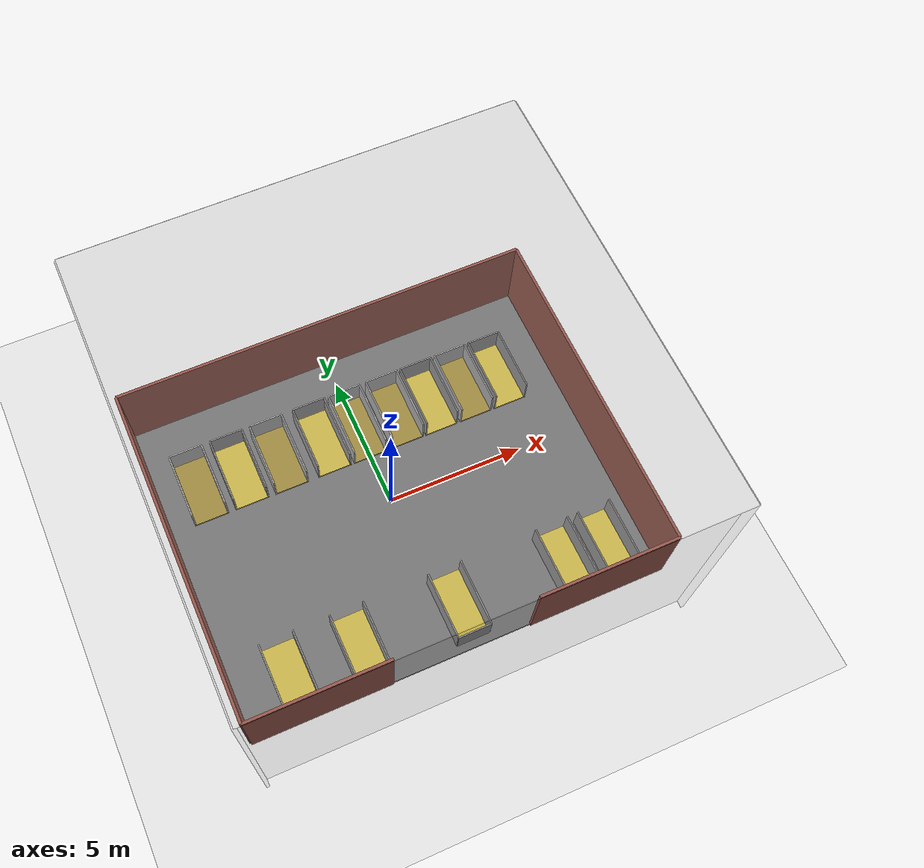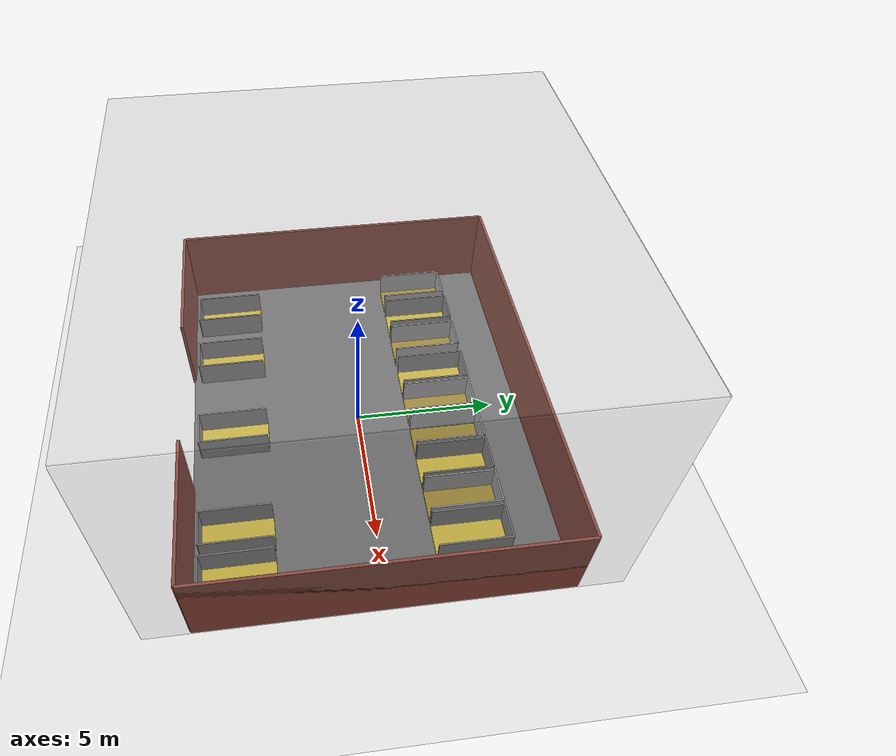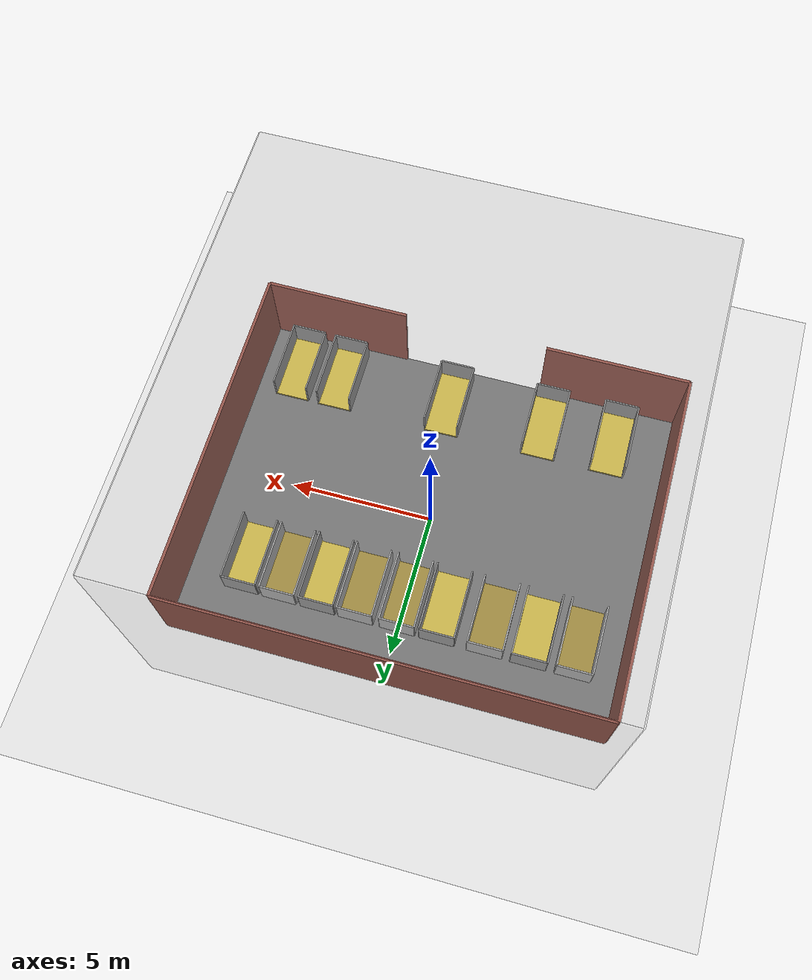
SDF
<sdf version="1.10">
 <world name="default">
  <physics name="1ms" type="ignored">
   <max_step_size>0.001</max_step_size>
   <real_time_factor>1</real_time_factor>
   <real_time_update_rate>1000</real_time_update_rate>
  </physics>
  <plugin name="gz::sim::systems::Buoyancy" filename="gz-sim-buoyancy-system">
   <uniform_fluid_density>0</uniform_fluid_density>
  </plugin>
  <plugin name="gz::sim::systems::Physics" filename="gz-sim-physics-system"/>
  <plugin name="gz::sim::systems::UserCommands" filename="gz-sim-user-commands-system"/>
  <plugin name="gz::sim::systems::SceneBroadcaster" filename="gz-sim-scene-broadcaster-system"/>
  <plugin name="gz::sim::systems::Imu" filename="gz-sim-imu-system"/>
  <plugin name="gz::sim::systems::Sensors" filename="gz-sim-sensors-system">
   <render_engine>ogre2</render_engine>
  </plugin>
  <plugin name="gz::sim::systems::Buoyancy" filename="gz-sim-buoyancy-system">
   <uniform_fluid_density>0</uniform_fluid_density>
  </plugin>
  <plugin name="gz::sim::systems::ParticleEmitter" filename="gz-sim-particle-emitter-system"/>
  <plugin name="gz::sim::systems::Contact" filename="gz-sim-contact-system"/>
  <gravity>0 0 -9.8000000000000007</gravity>
  <magnetic_field>5.5644999999999998e-06 2.2875799999999999e-05 -4.2388400000000002e-05</magnetic_field>
  <atmosphere type="adiabatic"/>
  <scene>
   <ambient>0.400000006 0.400000006 0.400000006 1</ambient>
   <background>0.699999988 0.699999988 0.699999988 1</background>
   <shadows>true</shadows>
  </scene>
  <model name="ground_plane">
   <static>true</static>
   <link name="link">
    <collision name="collision">
     <geometry><plane><normal>0 0 1</normal><size>1 1</size></plane></geometry>
    </collision>
    <visual name="visual">
     <geometry><plane><normal>0 0 1</normal><size>100 100</size></plane></geometry>
     <material>
      <ambient>0.800000012 0.800000012 0.800000012 1</ambient>
      <diffuse>0.800000012 0.800000012 0.800000012 1</diffuse>
      <specular>0.800000012 0.800000012 0.800000012 1</specular>
     </material>
    </visual>
    <inertial>
     <mass>1</mass>
     <inertia><ixx>1</ixx><ixy>0</ixy><ixz>0</ixz><iyy>1</iyy><iyz>0</iyz><izz>1</izz></inertia>
    </inertial>
   </link>
  </model>
  <model name="boundary1">
   <pose>0 7.5 1.5 0 0 0</pose>
   <static>true</static>
   <link name="body">
    <visual name="body_visual">
     <geometry><box><size>15 0.10000000000000001 15</size></box></geometry>
     <material>
      <ambient>1 0.899999976 0.899999976 0.200000003</ambient>
      <diffuse>0.5 0.5 0.5 0.200000003</diffuse>
     </material>
    </visual>
    <collision name="body_collision">
     <geometry><box><size>15 0.10000000000000001 4</size></box></geometry>
    </collision>
    <inertial>
     <mass>1</mass>
     <inertia><ixx>1</ixx><ixy>0</ixy><ixz>0</ixz><iyy>1</iyy><iyz>0</iyz><izz>1</izz></inertia>
    </inertial>
   </link>
  </model>
  <model name="boundary2">
   <pose>0 -7.1991119384765625 1.5 0 0 0</pose>
   <static>true</static>
   <link name="body">
    <visual name="body_visual">
     <geometry><box><size>15 0.10000000000000001 15</size></box></geometry>
     <material>
      <ambient>1 0.899999976 0.899999976 0.200000003</ambient>
      <diffuse>0.5 0.5 0.5 0.200000003</diffuse>
     </material>
    </visual>
    <collision name="body_collision">
     <geometry><box><size>15 0.10000000000000001 4</size></box></geometry>
    </collision>
    <inertial>
     <mass>1</mass>
     <inertia><ixx>1</ixx><ixy>0</ixy><ixz>0</ixz><iyy>1</iyy><iyz>0</iyz><izz>1</izz></inertia>
    </inertial>
   </link>
  </model>
  <model name="boundary3">
   <pose>7.5 0 1.5 0 0 0</pose>
   <static>true</static>
   <link name="body">
    <visual name="body_visual">
     <geometry><box><size>0.10000000000000001 15 15</size></box></geometry>
     <material>
      <ambient>1 0.899999976 0.899999976 0.200000003</ambient>
      <diffuse>0.5 0.5 0.5 0.200000003</diffuse>
     </material>
    </visual>
    <collision name="body_collision">
     <geometry><box><size>0.10000000000000001 10 4</size></box></geometry>
    </collision>
    <inertial>
     <mass>1</mass>
     <inertia><ixx>1</ixx><ixy>0</ixy><ixz>0</ixz><iyy>1</iyy><iyz>0</iyz><izz>1</izz></inertia>
    </inertial>
   </link>
  </model>
  <model name="boundary4">
   <pose>-7.5 0 1.5 0 0 0</pose>
   <static>true</static>
   <link name="body">
    <visual name="body_visual">
     <geometry><box><size>0.10000000000000001 15 15</size></box></geometry>
     <material>
      <ambient>1 0.899999976 0.899999976 0.200000003</ambient>
      <diffuse>0.5 0.5 0.5 0.200000003</diffuse>
     </material>
    </visual>
    <collision name="body_collision">
     <geometry><box><size>0.10000000000000001 10 4</size></box></geometry>
    </collision>
    <inertial>
     <mass>1</mass>
     <inertia><ixx>1</ixx><ixy>0</ixy><ixz>0</ixz><iyy>1</iyy><iyz>0</iyz><izz>1</izz></inertia>
    </inertial>
   </link>
  </model>
  <model name="ceiling">
   <pose>0 0 9 0 0 0</pose>
   <static>true</static>
   <link name="body">
    <visual name="body_visual">
     <geometry><box><size>15 15 0.10000000000000001</size></box></geometry>
     <material>
      <ambient>1 0.899999976 0.899999976 0.200000003</ambient>
      <diffuse>0.5 0.5 0.5 0.200000003</diffuse>
     </material>
    </visual>
    <collision name="body_collision">
     <geometry><box><size>15 15 0.10000000000000001</size></box></geometry>
    </collision>
    <inertial>
     <mass>1</mass>
     <inertia><ixx>1</ixx><ixy>0</ixy><ixz>0</ixz><iyy>1</iyy><iyz>0</iyz><izz>1</izz></inertia>
    </inertial>
   </link>
  </model>
  <model name="barn">
   <static>true</static>
   <link name="floor">
    <collision name="floor_coll">
     <geometry><box><size>15 12 0.10000000000000001</size></box></geometry>
     <surface><friction><ode><mu>1</mu><mu2>1</mu2></ode></friction></surface>
    </collision>
    <visual name="floor_vis">
     <geometry><box><size>15 12 0.10000000000000001</size></box></geometry>
     <material>
      <ambient>0.35 0.35 0.35 1</ambient>
      <diffuse>0.45 0.45 0.45 1</diffuse>
      <specular>0.2 0.2 0.2 1</specular>
      <emissive>0 0 0 1</emissive>
     </material>
    </visual>
    <inertial>
     <mass>1</mass>
     <inertia><ixx>1</ixx><ixy>0</ixy><ixz>0</ixz><iyy>1</iyy><iyz>0</iyz><izz>1</izz></inertia>
    </inertial>
   </link>
   <link name="wall_w">
    <pose>-7.5 0 1.5 0 0 0</pose>
    <collision name="c"><geometry><box><size>0.10000000000000001 12 3</size></box></geometry></collision>
    <visual name="v">
     <geometry><box><size>0.10000000000000001 12 3</size></box></geometry>
     <material>
      <ambient>0.45 0.25 0.2 1</ambient>
      <diffuse>0.6 0.3 0.25 1</diffuse>
      <specular>0.2 0.2 0.2 1</specular>
      <emissive>0 0 0 1</emissive>
     </material>
    </visual>
    <inertial>
     <mass>1</mass>
     <inertia><ixx>1</ixx><ixy>0</ixy><ixz>0</ixz><iyy>1</iyy><iyz>0</iyz><izz>1</izz></inertia>
    </inertial>
   </link>
   <link name="wall_e">
    <pose>7.5 0 1.5 0 0 0</pose>
    <collision name="c"><geometry><box><size>0.10000000000000001 12 3</size></box></geometry></collision>
    <visual name="v">
     <geometry><box><size>0.10000000000000001 12 3</size></box></geometry>
     <material>
      <ambient>0.45 0.25 0.2 1</ambient>
      <diffuse>0.6 0.3 0.25 1</diffuse>
      <specular>0.2 0.2 0.2 1</specular>
      <emissive>0 0 0 1</emissive>
     </material>
    </visual>
    <inertial>
     <mass>1</mass>
     <inertia><ixx>1</ixx><ixy>0</ixy><ixz>0</ixz><iyy>1</iyy><iyz>0</iyz><izz>1</izz></inertia>
    </inertial>
   </link>
   <model name="south_wall">
    <static>true</static>
    <link name="sw_left">
     <pose>-5 -6 1.5 0 0 0</pose>
     <collision name="c"><geometry><box><size>5 0.10000000000000001 3</size></box></geometry></collision>
     <visual name="v">
      <geometry><box><size>5 0.10000000000000001 3</size></box></geometry>
      <material>
       <ambient>0.45 0.25 0.2 1</ambient>
       <diffuse>0.6 0.3 0.25 1</diffuse>
       <specular>0.2 0.2 0.2 1</specular>
       <emissive>0 0 0 1</emissive>
      </material>
     </visual>
    </link>
    <link name="sw_right">
     <pose>5 -6 1.5 0 0 0</pose>
     <collision name="c"><geometry><box><size>5 0.10000000000000001 3</size></box></geometry></collision>
     <visual name="v">
      <geometry><box><size>5 0.10000000000000001 3</size></box></geometry>
      <material>
       <ambient>0.45 0.25 0.2 1</ambient>
       <diffuse>0.6 0.3 0.25 1</diffuse>
       <specular>0.2 0.2 0.2 1</specular>
       <emissive>0 0 0 1</emissive>
      </material>
     </visual>
    </link>
   </model>
   <link name="wall_n">
    <pose>0 6 1.5 0 0 0</pose>
    <collision name="c"><geometry><box><size>15 0.10000000000000001 3</size></box></geometry></collision>
    <visual name="v">
     <geometry><box><size>15 0.10000000000000001 3</size></box></geometry>
     <material>
      <ambient>0.45 0.25 0.2 1</ambient>
      <diffuse>0.6 0.3 0.25 1</diffuse>
      <specular>0.2 0.2 0.2 1</specular>
      <emissive>0 0 0 1</emissive>
     </material>
    </visual>
    <inertial>
     <mass>1</mass>
     <inertia><ixx>1</ixx><ixy>0</ixy><ixz>0</ixz><iyy>1</iyy><iyz>0</iyz><izz>1</izz></inertia>
    </inertial>
   </link>
  </model>
  <model name="cubicle_dry_1">
   <static>true</static>
   <pose>-4.4929409027099609 3.0041000843048096 0 0 0 0</pose>
   <link name="bedding">
    <pose>0 0 0.059999999999999998 0 0 0</pose>
    <collision name="c">
     <geometry><box><size>1.2 2.3999999999999999 0.12</size></box></geometry>
     <surface><friction><ode><mu>0.80000000000000004</mu><mu2>0.80000000000000004</mu2></ode></friction></surface>
    </collision>
    <visual name="v">
     <geometry><box><size>1.2 2.3999999999999999 0.12</size></box></geometry>
     <material><ambient>0.850000024 0.75 0.25 1</ambient><diffuse>0.850000024 0.75 0.25 1</diffuse></material>
    </visual>
    <inertial>
     <mass>1</mass>
     <inertia><ixx>1</ixx><ixy>0</ixy><ixz>0</ixz><iyy>1</iyy><iyz>0</iyz><izz>1</izz></inertia>
    </inertial>
   </link>
   <link name="rail_left">
    <pose>-0.59999999999999964 0 0.5 0 0 0</pose>
    <collision name="c">
     <geometry><box><size>0.050000000000000003 2.3999999999999999 1</size></box></geometry>
    </collision>
    <visual name="v">
     <geometry><box><size>0.050000000000000003 2.3999999999999999 1</size></box></geometry>
     <material>
      <ambient>0.5 0.5 0.5 1</ambient>
      <diffuse>0.6 0.6 0.6 1</diffuse>
      <specular>0.8 0.8 0.8 1</specular>
      <emissive>0 0 0 1</emissive>
     </material>
    </visual>
    <inertial>
     <mass>1</mass>
     <inertia><ixx>1</ixx><ixy>0</ixy><ixz>0</ixz><iyy>1</iyy><iyz>0</iyz><izz>1</izz></inertia>
    </inertial>
   </link>
   <link name="rail_right">
    <pose>0.59999999999999964 0 0.5 0 0 0</pose>
    <collision name="c">
     <geometry><box><size>0.050000000000000003 2.3999999999999999 1</size></box></geometry>
    </collision>
    <visual name="v">
     <geometry><box><size>0.050000000000000003 2.3999999999999999 1</size></box></geometry>
     <material>
      <ambient>0.5 0.5 0.5 1</ambient>
      <diffuse>0.6 0.6 0.6 1</diffuse>
      <specular>0.8 0.8 0.8 1</specular>
      <emissive>0 0 0 1</emissive>
     </material>
    </visual>
    <inertial>
     <mass>1</mass>
     <inertia><ixx>1</ixx><ixy>0</ixy><ixz>0</ixz><iyy>1</iyy><iyz>0</iyz><izz>1</izz></inertia>
    </inertial>
   </link>
   <link name="rail_head">
    <pose>0 1.2000000000000002 0.5 0 0 0</pose>
    <collision name="c"><geometry><box><size>1.2 0.050000000000000003 1</size></box></geometry></collision>
    <visual name="v">
     <geometry><box><size>1.2 0.050000000000000003 1</size></box></geometry>
     <material>
      <ambient>0.5 0.5 0.5 1</ambient>
      <diffuse>0.6 0.6 0.6 1</diffuse>
      <specular>0.8 0.8 0.8 1</specular>
      <emissive>0 0 0 1</emissive>
     </material>
    </visual>
    <inertial>
     <mass>1</mass>
     <inertia><ixx>1</ixx><ixy>0</ixy><ixz>0</ixz><iyy>1</iyy><iyz>0</iyz><izz>1</izz></inertia>
    </inertial>
   </link>
  </model>
  <model name="cubicle_dry_2">
   <static>true</static>
   <pose>-1.3636399507522583 3.0049324035644531 0 0 0 0</pose>
   <link name="bedding">
    <pose>0 0 0.059999999999999998 0 0 0</pose>
    <collision name="c">
     <geometry><box><size>1.2 2.3999999999999999 0.12</size></box></geometry>
     <surface><friction><ode><mu>0.80000000000000004</mu><mu2>0.80000000000000004</mu2></ode></friction></surface>
    </collision>
    <visual name="v">
     <geometry><box><size>1.2 2.3999999999999999 0.12</size></box></geometry>
     <material><ambient>0.850000024 0.75 0.25 1</ambient><diffuse>0.850000024 0.75 0.25 1</diffuse></material>
    </visual>
    <inertial>
     <mass>1</mass>
     <inertia><ixx>1</ixx><ixy>0</ixy><ixz>0</ixz><iyy>1</iyy><iyz>0</iyz><izz>1</izz></inertia>
    </inertial>
   </link>
   <link name="rail_left">
    <pose>-0.60000000000000009 0 0.5 0 0 0</pose>
    <collision name="c">
     <geometry><box><size>0.050000000000000003 2.3999999999999999 1</size></box></geometry>
    </collision>
    <visual name="v">
     <geometry><box><size>0.050000000000000003 2.3999999999999999 1</size></box></geometry>
     <material>
      <ambient>0.5 0.5 0.5 1</ambient>
      <diffuse>0.6 0.6 0.6 1</diffuse>
      <specular>0.8 0.8 0.8 1</specular>
      <emissive>0 0 0 1</emissive>
     </material>
    </visual>
    <inertial>
     <mass>1</mass>
     <inertia><ixx>1</ixx><ixy>0</ixy><ixz>0</ixz><iyy>1</iyy><iyz>0</iyz><izz>1</izz></inertia>
    </inertial>
   </link>
   <link name="rail_right">
    <pose>0.60000000000000009 0 0.5 0 0 0</pose>
    <collision name="c">
     <geometry><box><size>0.050000000000000003 2.3999999999999999 1</size></box></geometry>
    </collision>
    <visual name="v">
     <geometry><box><size>0.050000000000000003 2.3999999999999999 1</size></box></geometry>
     <material>
      <ambient>0.5 0.5 0.5 1</ambient>
      <diffuse>0.6 0.6 0.6 1</diffuse>
      <specular>0.8 0.8 0.8 1</specular>
      <emissive>0 0 0 1</emissive>
     </material>
    </visual>
    <inertial>
     <mass>1</mass>
     <inertia><ixx>1</ixx><ixy>0</ixy><ixz>0</ixz><iyy>1</iyy><iyz>0</iyz><izz>1</izz></inertia>
    </inertial>
   </link>
   <link name="rail_head">
    <pose>0 1.2000000000000002 0.5 0 0 0</pose>
    <collision name="c"><geometry><box><size>1.2 0.050000000000000003 1</size></box></geometry></collision>
    <visual name="v">
     <geometry><box><size>1.2 0.050000000000000003 1</size></box></geometry>
     <material>
      <ambient>0.5 0.5 0.5 1</ambient>
      <diffuse>0.6 0.6 0.6 1</diffuse>
      <specular>0.8 0.8 0.8 1</specular>
      <emissive>0 0 0 1</emissive>
     </material>
    </visual>
    <inertial>
     <mass>1</mass>
     <inertia><ixx>1</ixx><ixy>0</ixy><ixz>0</ixz><iyy>1</iyy><iyz>0</iyz><izz>1</izz></inertia>
    </inertial>
   </link>
  </model>
  <model name="cubicle_dry_3">
   <static>true</static>
   <pose>2.7862999439239502 2.9982986450195312 0 0 0 0</pose>
   <link name="bedding">
    <pose>0 0 0.059999999999999998 0 0 0</pose>
    <collision name="c">
     <geometry><box><size>1.2 2.3999999999999999 0.12</size></box></geometry>
     <surface><friction><ode><mu>0.80000000000000004</mu><mu2>0.80000000000000004</mu2></ode></friction></surface>
    </collision>
    <visual name="v">
     <geometry><box><size>1.2 2.3999999999999999 0.12</size></box></geometry>
     <material><ambient>0.850000024 0.75 0.25 1</ambient><diffuse>0.850000024 0.75 0.25 1</diffuse></material>
    </visual>
    <inertial>
     <mass>1</mass>
     <inertia><ixx>1</ixx><ixy>0</ixy><ixz>0</ixz><iyy>1</iyy><iyz>0</iyz><izz>1</izz></inertia>
    </inertial>
   </link>
   <link name="rail_left">
    <pose>-0.60000000000000009 0 0.5 0 0 0</pose>
    <collision name="c">
     <geometry><box><size>0.050000000000000003 2.3999999999999999 1</size></box></geometry>
    </collision>
    <visual name="v">
     <geometry><box><size>0.050000000000000003 2.3999999999999999 1</size></box></geometry>
     <material>
      <ambient>0.5 0.5 0.5 1</ambient>
      <diffuse>0.6 0.6 0.6 1</diffuse>
      <specular>0.8 0.8 0.8 1</specular>
      <emissive>0 0 0 1</emissive>
     </material>
    </visual>
    <inertial>
     <mass>1</mass>
     <inertia><ixx>1</ixx><ixy>0</ixy><ixz>0</ixz><iyy>1</iyy><iyz>0</iyz><izz>1</izz></inertia>
    </inertial>
   </link>
   <link name="rail_right">
    <pose>0.60000000000000009 0 0.5 0 0 0</pose>
    <collision name="c">
     <geometry><box><size>0.050000000000000003 2.3999999999999999 1</size></box></geometry>
    </collision>
    <visual name="v">
     <geometry><box><size>0.050000000000000003 2.3999999999999999 1</size></box></geometry>
     <material>
      <ambient>0.5 0.5 0.5 1</ambient>
      <diffuse>0.6 0.6 0.6 1</diffuse>
      <specular>0.8 0.8 0.8 1</specular>
      <emissive>0 0 0 1</emissive>
     </material>
    </visual>
    <inertial>
     <mass>1</mass>
     <inertia><ixx>1</ixx><ixy>0</ixy><ixz>0</ixz><iyy>1</iyy><iyz>0</iyz><izz>1</izz></inertia>
    </inertial>
   </link>
   <link name="rail_head">
    <pose>0 1.2000000000000002 0.5 0 0 0</pose>
    <collision name="c"><geometry><box><size>1.2 0.050000000000000003 1</size></box></geometry></collision>
    <visual name="v">
     <geometry><box><size>1.2 0.050000000000000003 1</size></box></geometry>
     <material>
      <ambient>0.5 0.5 0.5 1</ambient>
      <diffuse>0.6 0.6 0.6 1</diffuse>
      <specular>0.8 0.8 0.8 1</specular>
      <emissive>0 0 0 1</emissive>
     </material>
    </visual>
    <inertial>
     <mass>1</mass>
     <inertia><ixx>1</ixx><ixy>0</ixy><ixz>0</ixz><iyy>1</iyy><iyz>0</iyz><izz>1</izz></inertia>
    </inertial>
   </link>
  </model>
  <model name="cubicle_dry_4">
   <static>true</static>
   <pose>5.498650074005127 2.9945023059844971 0 0 0 0</pose>
   <link name="bedding">
    <pose>0 0 0.059999999999999998 0 0 0</pose>
    <collision name="c">
     <geometry><box><size>1.2 2.3999999999999999 0.12</size></box></geometry>
     <surface><friction><ode><mu>0.80000000000000004</mu><mu2>0.80000000000000004</mu2></ode></friction></surface>
    </collision>
    <visual name="v">
     <geometry><box><size>1.2 2.3999999999999999 0.12</size></box></geometry>
     <material><ambient>0.850000024 0.75 0.25 1</ambient><diffuse>0.850000024 0.75 0.25 1</diffuse></material>
    </visual>
    <inertial>
     <mass>1</mass>
     <inertia><ixx>1</ixx><ixy>0</ixy><ixz>0</ixz><iyy>1</iyy><iyz>0</iyz><izz>1</izz></inertia>
    </inertial>
   </link>
   <link name="rail_left">
    <pose>-0.59999999999999964 0 0.5 0 0 0</pose>
    <collision name="c">
     <geometry><box><size>0.050000000000000003 2.3999999999999999 1</size></box></geometry>
    </collision>
    <visual name="v">
     <geometry><box><size>0.050000000000000003 2.3999999999999999 1</size></box></geometry>
     <material>
      <ambient>0.5 0.5 0.5 1</ambient>
      <diffuse>0.6 0.6 0.6 1</diffuse>
      <specular>0.8 0.8 0.8 1</specular>
      <emissive>0 0 0 1</emissive>
     </material>
    </visual>
    <inertial>
     <mass>1</mass>
     <inertia><ixx>1</ixx><ixy>0</ixy><ixz>0</ixz><iyy>1</iyy><iyz>0</iyz><izz>1</izz></inertia>
    </inertial>
   </link>
   <link name="rail_right">
    <pose>0.59999999999999964 0 0.5 0 0 0</pose>
    <collision name="c">
     <geometry><box><size>0.050000000000000003 2.3999999999999999 1</size></box></geometry>
    </collision>
    <visual name="v">
     <geometry><box><size>0.050000000000000003 2.3999999999999999 1</size></box></geometry>
     <material>
      <ambient>0.5 0.5 0.5 1</ambient>
      <diffuse>0.6 0.6 0.6 1</diffuse>
      <specular>0.8 0.8 0.8 1</specular>
      <emissive>0 0 0 1</emissive>
     </material>
    </visual>
    <inertial>
     <mass>1</mass>
     <inertia><ixx>1</ixx><ixy>0</ixy><ixz>0</ixz><iyy>1</iyy><iyz>0</iyz><izz>1</izz></inertia>
    </inertial>
   </link>
   <link name="rail_head">
    <pose>0 1.2000000000000002 0.5 0 0 0</pose>
    <collision name="c"><geometry><box><size>1.2 0.050000000000000003 1</size></box></geometry></collision>
    <visual name="v">
     <geometry><box><size>1.2 0.050000000000000003 1</size></box></geometry>
     <material>
      <ambient>0.5 0.5 0.5 1</ambient>
      <diffuse>0.6 0.6 0.6 1</diffuse>
      <specular>0.8 0.8 0.8 1</specular>
      <emissive>0 0 0 1</emissive>
     </material>
    </visual>
    <inertial>
     <mass>1</mass>
     <inertia><ixx>1</ixx><ixy>0</ixy><ixz>0</ixz><iyy>1</iyy><iyz>0</iyz><izz>1</izz></inertia>
    </inertial>
   </link>
  </model>
  <model name="cubicle_dry_5">
   <static>true</static>
   <pose>6.1291122436523438 -4.5083003044128418 0 0 0 -3.1361299998965806</pose>
   <link name="bedding">
    <pose>0 0 0.059999999999999998 0 0 0</pose>
    <collision name="c">
     <geometry><box><size>1.2 2.3999999999999999 0.12</size></box></geometry>
     <surface><friction><ode><mu>0.80000000000000004</mu><mu2>0.80000000000000004</mu2></ode></friction></surface>
    </collision>
    <visual name="v">
     <geometry><box><size>1.2 2.3999999999999999 0.12</size></box></geometry>
     <material><ambient>0.850000024 0.75 0.25 1</ambient><diffuse>0.850000024 0.75 0.25 1</diffuse></material>
    </visual>
    <inertial>
     <mass>1</mass>
     <inertia><ixx>1</ixx><ixy>0</ixy><ixz>0</ixz><iyy>1</iyy><iyz>0</iyz><izz>1</izz></inertia>
    </inertial>
   </link>
   <link name="rail_left">
    <pose>-0.60000047355440067 4.431029765328276e-09 0.49999999999999994 0 0 0</pose>
    <collision name="c">
     <geometry><box><size>0.050000000000000003 2.3999999999999999 1</size></box></geometry>
    </collision>
    <visual name="v">
     <geometry><box><size>0.050000000000000003 2.3999999999999999 1</size></box></geometry>
     <material>
      <ambient>0.5 0.5 0.5 1</ambient>
      <diffuse>0.6 0.6 0.6 1</diffuse>
      <specular>0.8 0.8 0.8 1</specular>
      <emissive>0 0 0 1</emissive>
     </material>
    </visual>
    <inertial>
     <mass>1</mass>
     <inertia><ixx>1</ixx><ixy>0</ixy><ixz>0</ixz><iyy>1</iyy><iyz>0</iyz><izz>1</izz></inertia>
    </inertial>
   </link>
   <link name="rail_right">
    <pose>0.60000047355440866 -4.4310342062203745e-09 0.49999999999999994 0 0 0</pose>
    <collision name="c">
     <geometry><box><size>0.050000000000000003 2.3999999999999999 1</size></box></geometry>
    </collision>
    <visual name="v">
     <geometry><box><size>0.050000000000000003 2.3999999999999999 1</size></box></geometry>
     <material>
      <ambient>0.5 0.5 0.5 1</ambient>
      <diffuse>0.6 0.6 0.6 1</diffuse>
      <specular>0.8 0.8 0.8 1</specular>
      <emissive>0 0 0 1</emissive>
     </material>
    </visual>
    <inertial>
     <mass>1</mass>
     <inertia><ixx>1</ixx><ixy>0</ixy><ixz>0</ixz><iyy>1</iyy><iyz>0</iyz><izz>1</izz></inertia>
    </inertial>
   </link>
   <link name="rail_head">
    <pose>8.8620648597270701e-09 1.2000009471088093 0.49999999999999994 0 0 0</pose>
    <collision name="c"><geometry><box><size>1.2 0.050000000000000003 1</size></box></geometry></collision>
    <visual name="v">
     <geometry><box><size>1.2 0.050000000000000003 1</size></box></geometry>
     <material>
      <ambient>0.5 0.5 0.5 1</ambient>
      <diffuse>0.6 0.6 0.6 1</diffuse>
      <specular>0.8 0.8 0.8 1</specular>
      <emissive>0 0 0 1</emissive>
     </material>
    </visual>
    <inertial>
     <mass>1</mass>
     <inertia><ixx>1</ixx><ixy>0</ixy><ixz>0</ixz><iyy>1</iyy><iyz>0</iyz><izz>1</izz></inertia>
    </inertial>
   </link>
  </model>
  <model name="cubicle_moist_1">
   <static>true</static>
   <pose>-6 3 0 0 0 0</pose>
   <link name="bedding">
    <pose>0 0 0.059999999999999998 0 0 0</pose>
    <collision name="c">
     <geometry><box><size>1.2 2.3999999999999999 0.12</size></box></geometry>
     <surface><friction><ode><mu>0.90000000000000002</mu><mu2>0.90000000000000002</mu2></ode></friction></surface>
    </collision>
    <visual name="v">
     <geometry><box><size>1.2 2.3999999999999999 0.12</size></box></geometry>
     <material>
      <ambient>0.649999976 0.550000012 0.200000003 1</ambient>
      <diffuse>0.649999976 0.550000012 0.200000003 1</diffuse>
     </material>
    </visual>
    <inertial>
     <mass>1</mass>
     <inertia><ixx>1</ixx><ixy>0</ixy><ixz>0</ixz><iyy>1</iyy><iyz>0</iyz><izz>1</izz></inertia>
    </inertial>
   </link>
   <link name="rail_left">
    <pose>-0.59999999999999964 0 0.5 0 0 0</pose>
    <collision name="c">
     <geometry><box><size>0.050000000000000003 2.3999999999999999 1</size></box></geometry>
    </collision>
    <visual name="v">
     <geometry><box><size>0.050000000000000003 2.3999999999999999 1</size></box></geometry>
    </visual>
    <inertial>
     <mass>1</mass>
     <inertia><ixx>1</ixx><ixy>0</ixy><ixz>0</ixz><iyy>1</iyy><iyz>0</iyz><izz>1</izz></inertia>
    </inertial>
   </link>
   <link name="rail_right">
    <pose>0.59999999999999964 0 0.5 0 0 0</pose>
    <collision name="c">
     <geometry><box><size>0.050000000000000003 2.3999999999999999 1</size></box></geometry>
    </collision>
    <visual name="v">
     <geometry><box><size>0.050000000000000003 2.3999999999999999 1</size></box></geometry>
    </visual>
    <inertial>
     <mass>1</mass>
     <inertia><ixx>1</ixx><ixy>0</ixy><ixz>0</ixz><iyy>1</iyy><iyz>0</iyz><izz>1</izz></inertia>
    </inertial>
   </link>
   <link name="rail_head">
    <pose>0 1.2000000000000002 0.5 0 0 0</pose>
    <collision name="c"><geometry><box><size>1.2 0.050000000000000003 1</size></box></geometry></collision>
    <visual name="v"><geometry><box><size>1.2 0.050000000000000003 1</size></box></geometry></visual>
    <inertial>
     <mass>1</mass>
     <inertia><ixx>1</ixx><ixy>0</ixy><ixz>0</ixz><iyy>1</iyy><iyz>0</iyz><izz>1</izz></inertia>
    </inertial>
   </link>
  </model>
  <model name="cubicle_moist_2">
   <static>true</static>
   <pose>-3 3 0 0 0 0</pose>
   <link name="bedding">
    <pose>0 0 0.059999999999999998 0 0 0</pose>
    <collision name="c">
     <geometry><box><size>1.2 2.3999999999999999 0.12</size></box></geometry>
     <surface><friction><ode><mu>0.90000000000000002</mu><mu2>0.90000000000000002</mu2></ode></friction></surface>
    </collision>
    <visual name="v">
     <geometry><box><size>1.2 2.3999999999999999 0.12</size></box></geometry>
     <material>
      <ambient>0.649999976 0.550000012 0.200000003 1</ambient>
      <diffuse>0.649999976 0.550000012 0.200000003 1</diffuse>
     </material>
    </visual>
    <inertial>
     <mass>1</mass>
     <inertia><ixx>1</ixx><ixy>0</ixy><ixz>0</ixz><iyy>1</iyy><iyz>0</iyz><izz>1</izz></inertia>
    </inertial>
   </link>
   <link name="rail_left">
    <pose>-0.60000000000000009 0 0.5 0 0 0</pose>
    <collision name="c">
     <geometry><box><size>0.050000000000000003 2.3999999999999999 1</size></box></geometry>
    </collision>
    <visual name="v">
     <geometry><box><size>0.050000000000000003 2.3999999999999999 1</size></box></geometry>
    </visual>
    <inertial>
     <mass>1</mass>
     <inertia><ixx>1</ixx><ixy>0</ixy><ixz>0</ixz><iyy>1</iyy><iyz>0</iyz><izz>1</izz></inertia>
    </inertial>
   </link>
   <link name="rail_right">
    <pose>0.60000000000000009 0 0.5 0 0 0</pose>
    <collision name="c">
     <geometry><box><size>0.050000000000000003 2.3999999999999999 1</size></box></geometry>
    </collision>
    <visual name="v">
     <geometry><box><size>0.050000000000000003 2.3999999999999999 1</size></box></geometry>
    </visual>
    <inertial>
     <mass>1</mass>
     <inertia><ixx>1</ixx><ixy>0</ixy><ixz>0</ixz><iyy>1</iyy><iyz>0</iyz><izz>1</izz></inertia>
    </inertial>
   </link>
   <link name="rail_head">
    <pose>0 1.2000000000000002 0.5 0 0 0</pose>
    <collision name="c"><geometry><box><size>1.2 0.050000000000000003 1</size></box></geometry></collision>
    <visual name="v"><geometry><box><size>1.2 0.050000000000000003 1</size></box></geometry></visual>
    <inertial>
     <mass>1</mass>
     <inertia><ixx>1</ixx><ixy>0</ixy><ixz>0</ixz><iyy>1</iyy><iyz>0</iyz><izz>1</izz></inertia>
    </inertial>
   </link>
  </model>
  <model name="cubicle_moist_3">
   <static>true</static>
   <pose>0 3 0 0 0 0</pose>
   <link name="bedding">
    <pose>0 0 0.059999999999999998 0 0 0</pose>
    <collision name="c">
     <geometry><box><size>1.2 2.3999999999999999 0.12</size></box></geometry>
     <surface><friction><ode><mu>0.90000000000000002</mu><mu2>0.90000000000000002</mu2></ode></friction></surface>
    </collision>
    <visual name="v">
     <geometry><box><size>1.2 2.3999999999999999 0.12</size></box></geometry>
     <material>
      <ambient>0.649999976 0.550000012 0.200000003 1</ambient>
      <diffuse>0.649999976 0.550000012 0.200000003 1</diffuse>
     </material>
    </visual>
    <inertial>
     <mass>1</mass>
     <inertia><ixx>1</ixx><ixy>0</ixy><ixz>0</ixz><iyy>1</iyy><iyz>0</iyz><izz>1</izz></inertia>
    </inertial>
   </link>
   <link name="rail_left">
    <pose>-0.59999999999999998 0 0.5 0 0 0</pose>
    <collision name="c">
     <geometry><box><size>0.050000000000000003 2.3999999999999999 1</size></box></geometry>
    </collision>
    <visual name="v">
     <geometry><box><size>0.050000000000000003 2.3999999999999999 1</size></box></geometry>
    </visual>
    <inertial>
     <mass>1</mass>
     <inertia><ixx>1</ixx><ixy>0</ixy><ixz>0</ixz><iyy>1</iyy><iyz>0</iyz><izz>1</izz></inertia>
    </inertial>
   </link>
   <link name="rail_right">
    <pose>0.59999999999999998 0 0.5 0 0 0</pose>
    <collision name="c">
     <geometry><box><size>0.050000000000000003 2.3999999999999999 1</size></box></geometry>
    </collision>
    <visual name="v">
     <geometry><box><size>0.050000000000000003 2.3999999999999999 1</size></box></geometry>
    </visual>
    <inertial>
     <mass>1</mass>
     <inertia><ixx>1</ixx><ixy>0</ixy><ixz>0</ixz><iyy>1</iyy><iyz>0</iyz><izz>1</izz></inertia>
    </inertial>
   </link>
   <link name="rail_head">
    <pose>0 1.2000000000000002 0.5 0 0 0</pose>
    <collision name="c"><geometry><box><size>1.2 0.050000000000000003 1</size></box></geometry></collision>
    <visual name="v"><geometry><box><size>1.2 0.050000000000000003 1</size></box></geometry></visual>
    <inertial>
     <mass>1</mass>
     <inertia><ixx>1</ixx><ixy>0</ixy><ixz>0</ixz><iyy>1</iyy><iyz>0</iyz><izz>1</izz></inertia>
    </inertial>
   </link>
  </model>
  <model name="cubicle_moist_4">
   <static>true</static>
   <pose>1.4506200551986694 3.0046675205230713 0 0 0 0</pose>
   <link name="bedding">
    <pose>0 0 0.059999999999999998 0 0 0</pose>
    <collision name="c">
     <geometry><box><size>1.2 2.3999999999999999 0.12</size></box></geometry>
     <surface><friction><ode><mu>0.90000000000000002</mu><mu2>0.90000000000000002</mu2></ode></friction></surface>
    </collision>
    <visual name="v">
     <geometry><box><size>1.2 2.3999999999999999 0.12</size></box></geometry>
     <material>
      <ambient>0.649999976 0.550000012 0.200000003 1</ambient>
      <diffuse>0.649999976 0.550000012 0.200000003 1</diffuse>
     </material>
    </visual>
    <inertial>
     <mass>1</mass>
     <inertia><ixx>1</ixx><ixy>0</ixy><ixz>0</ixz><iyy>1</iyy><iyz>0</iyz><izz>1</izz></inertia>
    </inertial>
   </link>
   <link name="rail_left">
    <pose>-0.60000000000000009 0 0.5 0 0 0</pose>
    <collision name="c">
     <geometry><box><size>0.050000000000000003 2.3999999999999999 1</size></box></geometry>
    </collision>
    <visual name="v">
     <geometry><box><size>0.050000000000000003 2.3999999999999999 1</size></box></geometry>
    </visual>
    <inertial>
     <mass>1</mass>
     <inertia><ixx>1</ixx><ixy>0</ixy><ixz>0</ixz><iyy>1</iyy><iyz>0</iyz><izz>1</izz></inertia>
    </inertial>
   </link>
   <link name="rail_right">
    <pose>0.60000000000000009 0 0.5 0 0 0</pose>
    <collision name="c">
     <geometry><box><size>0.050000000000000003 2.3999999999999999 1</size></box></geometry>
    </collision>
    <visual name="v">
     <geometry><box><size>0.050000000000000003 2.3999999999999999 1</size></box></geometry>
    </visual>
    <inertial>
     <mass>1</mass>
     <inertia><ixx>1</ixx><ixy>0</ixy><ixz>0</ixz><iyy>1</iyy><iyz>0</iyz><izz>1</izz></inertia>
    </inertial>
   </link>
   <link name="rail_head">
    <pose>0 1.2000000000000002 0.5 0 0 0</pose>
    <collision name="c"><geometry><box><size>1.2 0.050000000000000003 1</size></box></geometry></collision>
    <visual name="v"><geometry><box><size>1.2 0.050000000000000003 1</size></box></geometry></visual>
    <inertial>
     <mass>1</mass>
     <inertia><ixx>1</ixx><ixy>0</ixy><ixz>0</ixz><iyy>1</iyy><iyz>0</iyz><izz>1</izz></inertia>
    </inertial>
   </link>
  </model>
  <model name="cubicle_moist_5">
   <static>true</static>
   <pose>4.146634578704834 3 0 0 0 0</pose>
   <link name="bedding">
    <pose>0 0 0.059999999999999998 0 0 0</pose>
    <collision name="c">
     <geometry><box><size>1.2 2.3999999999999999 0.12</size></box></geometry>
     <surface><friction><ode><mu>0.90000000000000002</mu><mu2>0.90000000000000002</mu2></ode></friction></surface>
    </collision>
    <visual name="v">
     <geometry><box><size>1.2 2.3999999999999999 0.12</size></box></geometry>
     <material>
      <ambient>0.649999976 0.550000012 0.200000003 1</ambient>
      <diffuse>0.649999976 0.550000012 0.200000003 1</diffuse>
     </material>
    </visual>
    <inertial>
     <mass>1</mass>
     <inertia><ixx>1</ixx><ixy>0</ixy><ixz>0</ixz><iyy>1</iyy><iyz>0</iyz><izz>1</izz></inertia>
    </inertial>
   </link>
   <link name="rail_left">
    <pose>-0.59999999999999964 0 0.5 0 0 0</pose>
    <collision name="c">
     <geometry><box><size>0.050000000000000003 2.3999999999999999 1</size></box></geometry>
    </collision>
    <visual name="v">
     <geometry><box><size>0.050000000000000003 2.3999999999999999 1</size></box></geometry>
    </visual>
    <inertial>
     <mass>1</mass>
     <inertia><ixx>1</ixx><ixy>0</ixy><ixz>0</ixz><iyy>1</iyy><iyz>0</iyz><izz>1</izz></inertia>
    </inertial>
   </link>
   <link name="rail_right">
    <pose>0.59999999999999964 0 0.5 0 0 0</pose>
    <collision name="c">
     <geometry><box><size>0.050000000000000003 2.3999999999999999 1</size></box></geometry>
    </collision>
    <visual name="v">
     <geometry><box><size>0.050000000000000003 2.3999999999999999 1</size></box></geometry>
    </visual>
    <inertial>
     <mass>1</mass>
     <inertia><ixx>1</ixx><ixy>0</ixy><ixz>0</ixz><iyy>1</iyy><iyz>0</iyz><izz>1</izz></inertia>
    </inertial>
   </link>
   <link name="rail_head">
    <pose>0 1.2000000000000002 0.5 0 0 0</pose>
    <collision name="c"><geometry><box><size>1.2 0.050000000000000003 1</size></box></geometry></collision>
    <visual name="v"><geometry><box><size>1.2 0.050000000000000003 1</size></box></geometry></visual>
    <inertial>
     <mass>1</mass>
     <inertia><ixx>1</ixx><ixy>0</ixy><ixz>0</ixz><iyy>1</iyy><iyz>0</iyz><izz>1</izz></inertia>
    </inertial>
   </link>
  </model>
  <model name="cubicle_dry_6">
   <static>true</static>
   <pose>4.5291122436523438 -4.5083003044128418 0 0 0 -3.1361299998965806</pose>
   <link name="bedding">
    <pose>0 0 0.059999999999999998 0 0 0</pose>
    <collision name="c">
     <geometry><box><size>1.2 2.3999999999999999 0.12</size></box></geometry>
     <surface><friction><ode><mu>0.80000000000000004</mu><mu2>0.80000000000000004</mu2></ode></friction></surface>
    </collision>
    <visual name="v">
     <geometry><box><size>1.2 2.3999999999999999 0.12</size></box></geometry>
     <material><ambient>0.850000024 0.75 0.25 1</ambient><diffuse>0.850000024 0.75 0.25 1</diffuse></material>
    </visual>
    <inertial>
     <mass>1</mass>
     <inertia><ixx>1</ixx><ixy>0</ixy><ixz>0</ixz><iyy>1</iyy><iyz>0</iyz><izz>1</izz></inertia>
    </inertial>
   </link>
   <link name="rail_left">
    <pose>-0.60000047355440067 4.431029765328276e-09 0.49999999999999994 0 0 0</pose>
    <collision name="c">
     <geometry><box><size>0.050000000000000003 2.3999999999999999 1</size></box></geometry>
    </collision>
    <visual name="v">
     <geometry><box><size>0.050000000000000003 2.3999999999999999 1</size></box></geometry>
     <material>
      <ambient>0.5 0.5 0.5 1</ambient>
      <diffuse>0.6 0.6 0.6 1</diffuse>
      <specular>0.8 0.8 0.8 1</specular>
      <emissive>0 0 0 1</emissive>
     </material>
    </visual>
    <inertial>
     <mass>1</mass>
     <inertia><ixx>1</ixx><ixy>0</ixy><ixz>0</ixz><iyy>1</iyy><iyz>0</iyz><izz>1</izz></inertia>
    </inertial>
   </link>
   <link name="rail_right">
    <pose>0.60000047355440866 -4.4310342062203745e-09 0.49999999999999994 0 0 0</pose>
    <collision name="c">
     <geometry><box><size>0.050000000000000003 2.3999999999999999 1</size></box></geometry>
    </collision>
    <visual name="v">
     <geometry><box><size>0.050000000000000003 2.3999999999999999 1</size></box></geometry>
     <material>
      <ambient>0.5 0.5 0.5 1</ambient>
      <diffuse>0.6 0.6 0.6 1</diffuse>
      <specular>0.8 0.8 0.8 1</specular>
      <emissive>0 0 0 1</emissive>
     </material>
    </visual>
    <inertial>
     <mass>1</mass>
     <inertia><ixx>1</ixx><ixy>0</ixy><ixz>0</ixz><iyy>1</iyy><iyz>0</iyz><izz>1</izz></inertia>
    </inertial>
   </link>
   <link name="rail_head">
    <pose>8.8620648597270701e-09 1.2000009471088093 0.49999999999999994 0 0 0</pose>
    <collision name="c"><geometry><box><size>1.2 0.050000000000000003 1</size></box></geometry></collision>
    <visual name="v">
     <geometry><box><size>1.2 0.050000000000000003 1</size></box></geometry>
     <material>
      <ambient>0.5 0.5 0.5 1</ambient>
      <diffuse>0.6 0.6 0.6 1</diffuse>
      <specular>0.8 0.8 0.8 1</specular>
      <emissive>0 0 0 1</emissive>
     </material>
    </visual>
    <inertial>
     <mass>1</mass>
     <inertia><ixx>1</ixx><ixy>0</ixy><ixz>0</ixz><iyy>1</iyy><iyz>0</iyz><izz>1</izz></inertia>
    </inertial>
   </link>
  </model>
  <model name="cubicle_dry_7">
   <static>true</static>
   <pose>0.5291122436523438 -4.5083003044128418 0 0 0 -3.1361299998965806</pose>
   <link name="bedding">
    <pose>0 0 0.059999999999999998 0 0 0</pose>
    <collision name="c">
     <geometry><box><size>1.2 2.3999999999999999 0.12</size></box></geometry>
     <surface><friction><ode><mu>0.80000000000000004</mu><mu2>0.80000000000000004</mu2></ode></friction></surface>
    </collision>
    <visual name="v">
     <geometry><box><size>1.2 2.3999999999999999 0.12</size></box></geometry>
     <material><ambient>0.850000024 0.75 0.25 1</ambient><diffuse>0.850000024 0.75 0.25 1</diffuse></material>
    </visual>
    <inertial>
     <mass>1</mass>
     <inertia><ixx>1</ixx><ixy>0</ixy><ixz>0</ixz><iyy>1</iyy><iyz>0</iyz><izz>1</izz></inertia>
    </inertial>
   </link>
   <link name="rail_left">
    <pose>-0.60000047355440067 4.431029765328276e-09 0.49999999999999994 0 0 0</pose>
    <collision name="c">
     <geometry><box><size>0.050000000000000003 2.3999999999999999 1</size></box></geometry>
    </collision>
    <visual name="v">
     <geometry><box><size>0.050000000000000003 2.3999999999999999 1</size></box></geometry>
     <material>
      <ambient>0.5 0.5 0.5 1</ambient>
      <diffuse>0.6 0.6 0.6 1</diffuse>
      <specular>0.8 0.8 0.8 1</specular>
      <emissive>0 0 0 1</emissive>
     </material>
    </visual>
    <inertial>
     <mass>1</mass>
     <inertia><ixx>1</ixx><ixy>0</ixy><ixz>0</ixz><iyy>1</iyy><iyz>0</iyz><izz>1</izz></inertia>
    </inertial>
   </link>
   <link name="rail_right">
    <pose>0.60000047355440866 -4.4310342062203745e-09 0.49999999999999994 0 0 0</pose>
    <collision name="c">
     <geometry><box><size>0.050000000000000003 2.3999999999999999 1</size></box></geometry>
    </collision>
    <visual name="v">
     <geometry><box><size>0.050000000000000003 2.3999999999999999 1</size></box></geometry>
     <material>
      <ambient>0.5 0.5 0.5 1</ambient>
      <diffuse>0.6 0.6 0.6 1</diffuse>
      <specular>0.8 0.8 0.8 1</specular>
      <emissive>0 0 0 1</emissive>
     </material>
    </visual>
    <inertial>
     <mass>1</mass>
     <inertia><ixx>1</ixx><ixy>0</ixy><ixz>0</ixz><iyy>1</iyy><iyz>0</iyz><izz>1</izz></inertia>
    </inertial>
   </link>
   <link name="rail_head">
    <pose>8.8620648597270701e-09 1.2000009471088093 0.49999999999999994 0 0 0</pose>
    <collision name="c"><geometry><box><size>1.2 0.050000000000000003 1</size></box></geometry></collision>
    <visual name="v">
     <geometry><box><size>1.2 0.050000000000000003 1</size></box></geometry>
     <material>
      <ambient>0.5 0.5 0.5 1</ambient>
      <diffuse>0.6 0.6 0.6 1</diffuse>
      <specular>0.8 0.8 0.8 1</specular>
      <emissive>0 0 0 1</emissive>
     </material>
    </visual>
    <inertial>
     <mass>1</mass>
     <inertia><ixx>1</ixx><ixy>0</ixy><ixz>0</ixz><iyy>1</iyy><iyz>0</iyz><izz>1</izz></inertia>
    </inertial>
   </link>
  </model>
  <model name="cubicle_dry_8">
   <static>true</static>
   <pose>-3.0291122436523438 -4.5083003044128418 0 0 0 -3.1361299998965806</pose>
   <link name="bedding">
    <pose>0 0 0.059999999999999998 0 0 0</pose>
    <collision name="c">
     <geometry><box><size>1.2 2.3999999999999999 0.12</size></box></geometry>
     <surface><friction><ode><mu>0.80000000000000004</mu><mu2>0.80000000000000004</mu2></ode></friction></surface>
    </collision>
    <visual name="v">
     <geometry><box><size>1.2 2.3999999999999999 0.12</size></box></geometry>
     <material><ambient>0.850000024 0.75 0.25 1</ambient><diffuse>0.850000024 0.75 0.25 1</diffuse></material>
    </visual>
    <inertial>
     <mass>1</mass>
     <inertia><ixx>1</ixx><ixy>0</ixy><ixz>0</ixz><iyy>1</iyy><iyz>0</iyz><izz>1</izz></inertia>
    </inertial>
   </link>
   <link name="rail_left">
    <pose>-0.60000047355440067 4.431029765328276e-09 0.49999999999999994 0 0 0</pose>
    <collision name="c">
     <geometry><box><size>0.050000000000000003 2.3999999999999999 1</size></box></geometry>
    </collision>
    <visual name="v">
     <geometry><box><size>0.050000000000000003 2.3999999999999999 1</size></box></geometry>
     <material>
      <ambient>0.5 0.5 0.5 1</ambient>
      <diffuse>0.6 0.6 0.6 1</diffuse>
      <specular>0.8 0.8 0.8 1</specular>
      <emissive>0 0 0 1</emissive>
     </material>
    </visual>
    <inertial>
     <mass>1</mass>
     <inertia><ixx>1</ixx><ixy>0</ixy><ixz>0</ixz><iyy>1</iyy><iyz>0</iyz><izz>1</izz></inertia>
    </inertial>
   </link>
   <link name="rail_right">
    <pose>0.60000047355440866 -4.4310342062203745e-09 0.49999999999999994 0 0 0</pose>
    <collision name="c">
     <geometry><box><size>0.050000000000000003 2.3999999999999999 1</size></box></geometry>
    </collision>
    <visual name="v">
     <geometry><box><size>0.050000000000000003 2.3999999999999999 1</size></box></geometry>
     <material>
      <ambient>0.5 0.5 0.5 1</ambient>
      <diffuse>0.6 0.6 0.6 1</diffuse>
      <specular>0.8 0.8 0.8 1</specular>
      <emissive>0 0 0 1</emissive>
     </material>
    </visual>
    <inertial>
     <mass>1</mass>
     <inertia><ixx>1</ixx><ixy>0</ixy><ixz>0</ixz><iyy>1</iyy><iyz>0</iyz><izz>1</izz></inertia>
    </inertial>
   </link>
   <link name="rail_head">
    <pose>8.8620648597270701e-09 1.2000009471088093 0.49999999999999994 0 0 0</pose>
    <collision name="c"><geometry><box><size>1.2 0.050000000000000003 1</size></box></geometry></collision>
    <visual name="v">
     <geometry><box><size>1.2 0.050000000000000003 1</size></box></geometry>
     <material>
      <ambient>0.5 0.5 0.5 1</ambient>
      <diffuse>0.6 0.6 0.6 1</diffuse>
      <specular>0.8 0.8 0.8 1</specular>
      <emissive>0 0 0 1</emissive>
     </material>
    </visual>
    <inertial>
     <mass>1</mass>
     <inertia><ixx>1</ixx><ixy>0</ixy><ixz>0</ixz><iyy>1</iyy><iyz>0</iyz><izz>1</izz></inertia>
    </inertial>
   </link>
  </model>
  <model name="cubicle_dry_9">
   <static>true</static>
   <pose>-5.5291122436523438 -4.5083003044128418 0 0 0 -3.1361299998965806</pose>
   <link name="bedding">
    <pose>0 0 0.059999999999999998 0 0 0</pose>
    <collision name="c">
     <geometry><box><size>1.2 2.3999999999999999 0.12</size></box></geometry>
     <surface><friction><ode><mu>0.80000000000000004</mu><mu2>0.80000000000000004</mu2></ode></friction></surface>
    </collision>
    <visual name="v">
     <geometry><box><size>1.2 2.3999999999999999 0.12</size></box></geometry>
     <material><ambient>0.850000024 0.75 0.25 1</ambient><diffuse>0.850000024 0.75 0.25 1</diffuse></material>
    </visual>
    <inertial>
     <mass>1</mass>
     <inertia><ixx>1</ixx><ixy>0</ixy><ixz>0</ixz><iyy>1</iyy><iyz>0</iyz><izz>1</izz></inertia>
    </inertial>
   </link>
   <link name="rail_left">
    <pose>-0.60000047355440067 4.431029765328276e-09 0.49999999999999994 0 0 0</pose>
    <collision name="c">
     <geometry><box><size>0.050000000000000003 2.3999999999999999 1</size></box></geometry>
    </collision>
    <visual name="v">
     <geometry><box><size>0.050000000000000003 2.3999999999999999 1</size></box></geometry>
     <material>
      <ambient>0.5 0.5 0.5 1</ambient>
      <diffuse>0.6 0.6 0.6 1</diffuse>
      <specular>0.8 0.8 0.8 1</specular>
      <emissive>0 0 0 1</emissive>
     </material>
    </visual>
    <inertial>
     <mass>1</mass>
     <inertia><ixx>1</ixx><ixy>0</ixy><ixz>0</ixz><iyy>1</iyy><iyz>0</iyz><izz>1</izz></inertia>
    </inertial>
   </link>
   <link name="rail_right">
    <pose>0.60000047355440866 -4.4310342062203745e-09 0.49999999999999994 0 0 0</pose>
    <collision name="c">
     <geometry><box><size>0.050000000000000003 2.3999999999999999 1</size></box></geometry>
    </collision>
    <visual name="v">
     <geometry><box><size>0.050000000000000003 2.3999999999999999 1</size></box></geometry>
     <material>
      <ambient>0.5 0.5 0.5 1</ambient>
      <diffuse>0.6 0.6 0.6 1</diffuse>
      <specular>0.8 0.8 0.8 1</specular>
      <emissive>0 0 0 1</emissive>
     </material>
    </visual>
    <inertial>
     <mass>1</mass>
     <inertia><ixx>1</ixx><ixy>0</ixy><ixz>0</ixz><iyy>1</iyy><iyz>0</iyz><izz>1</izz></inertia>
    </inertial>
   </link>
   <link name="rail_head">
    <pose>8.8620648597270701e-09 1.2000009471088093 0.49999999999999994 0 0 0</pose>
    <collision name="c"><geometry><box><size>1.2 0.050000000000000003 1</size></box></geometry></collision>
    <visual name="v">
     <geometry><box><size>1.2 0.050000000000000003 1</size></box></geometry>
     <material>
      <ambient>0.5 0.5 0.5 1</ambient>
      <diffuse>0.6 0.6 0.6 1</diffuse>
      <specular>0.8 0.8 0.8 1</specular>
      <emissive>0 0 0 1</emissive>
     </material>
    </visual>
    <inertial>
     <mass>1</mass>
     <inertia><ixx>1</ixx><ixy>0</ixy><ixz>0</ixz><iyy>1</iyy><iyz>0</iyz><izz>1</izz></inertia>
    </inertial>
   </link>
  </model>
  <light name="sun" type="directional">
   <pose>0 0 10 0 0 0</pose>
   <intensity>1</intensity>
   <direction>-0.5 0.10000000000000001 -0.90000000000000002</direction>
   <diffuse>0.800000012 0.800000012 0.800000012 1</diffuse>
   <specular>0.200000003 0.200000003 0.200000003 1</specular>
   <attenuation>
    <range>1000</range>
    <linear>0.01</linear>
    <constant>0.90000000000000002</constant>
    <quadratic>0.001</quadratic>
   </attenuation>
   <spot><inner_angle>0</inner_angle><outer_angle>0</outer_angle><falloff>0</falloff></spot>
  </light>
  <light name="indoor_fill" type="point">
   <pose>0 0 3.2000000000000002 0 0 0</pose>
   <cast_shadows>false</cast_shadows>
   <intensity>1</intensity>
   <direction>0 0 -1</direction>
   <diffuse>0.899999976 0.899999976 0.899999976 1</diffuse>
   <specular>0.100000001 0.100000001 0.100000001 1</specular>
   <attenuation>
    <range>20</range>
    <linear>0.01</linear>
    <constant>0.90000000000000002</constant>
    <quadratic>0.001</quadratic>
   </attenuation>
   <spot><inner_angle>0</inner_angle><outer_angle>0</outer_angle><falloff>0</falloff></spot>
  </light>
 </world>
</sdf>
